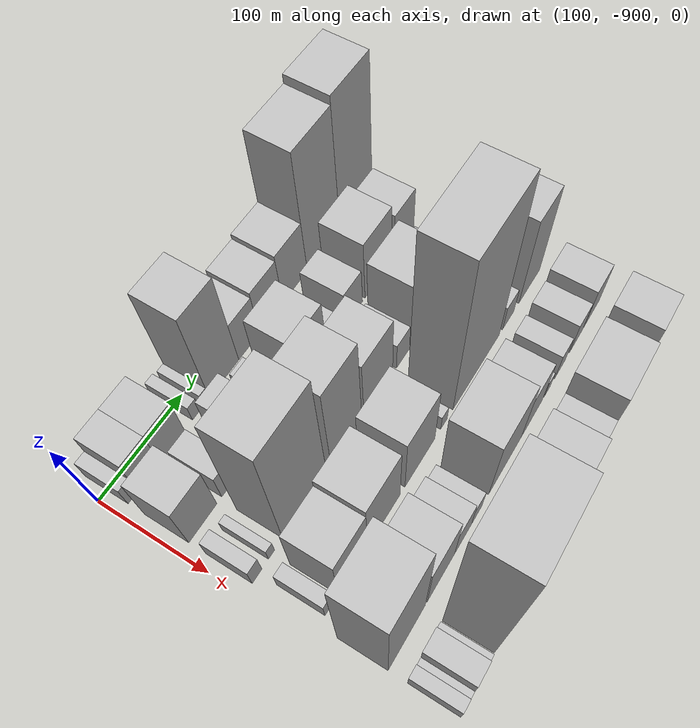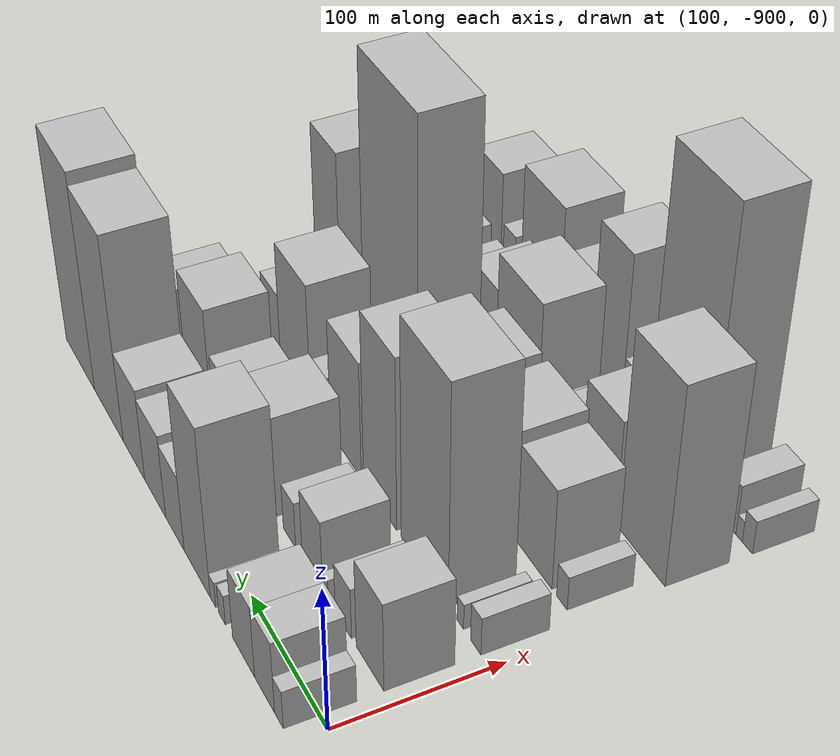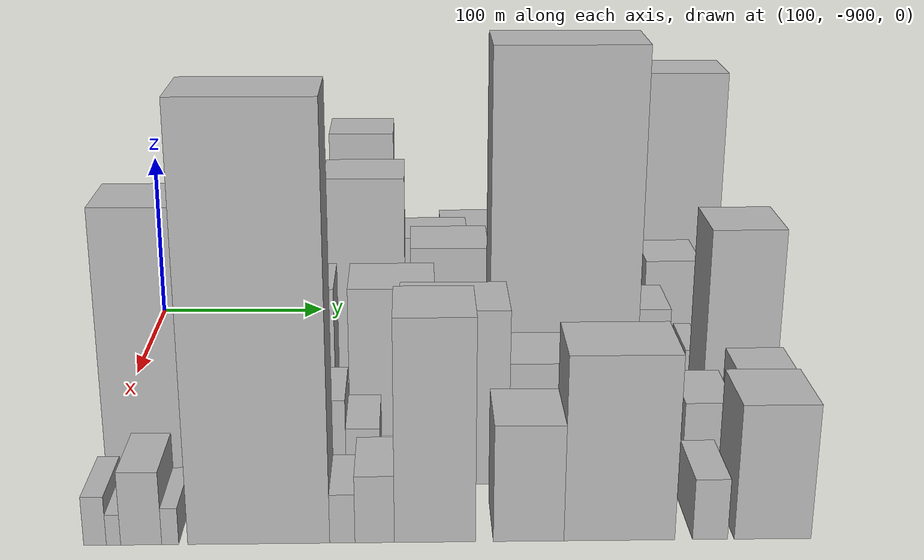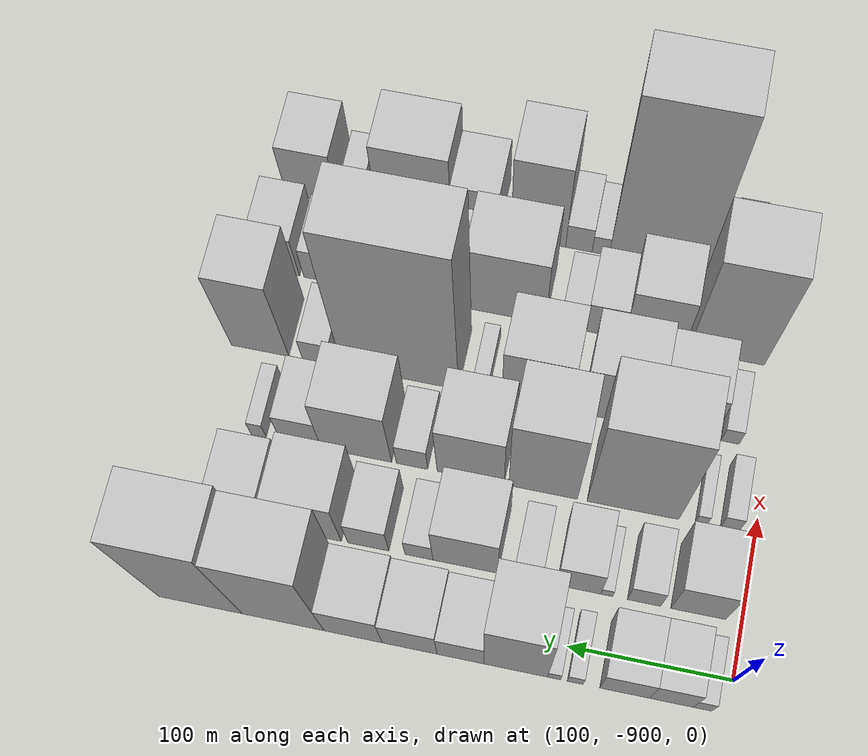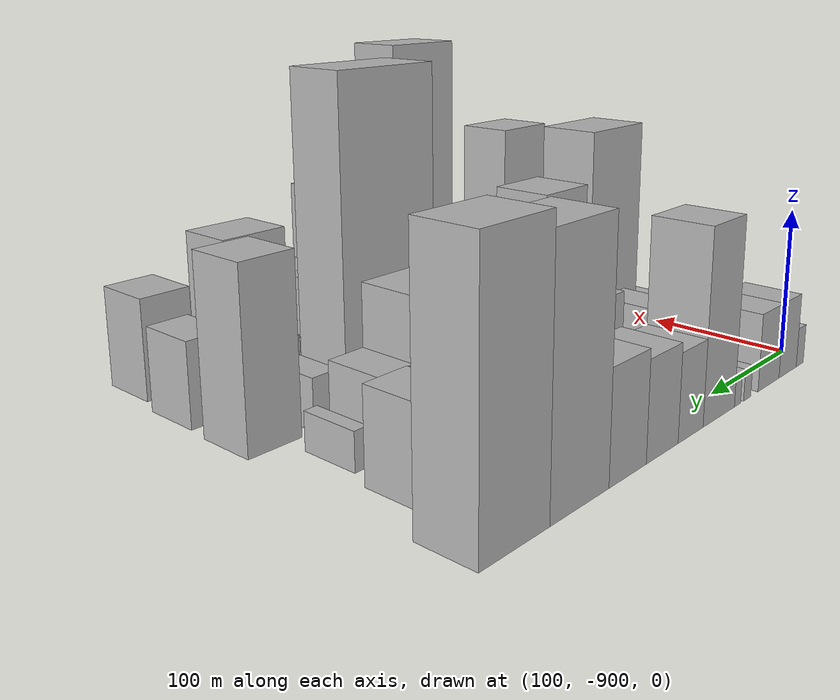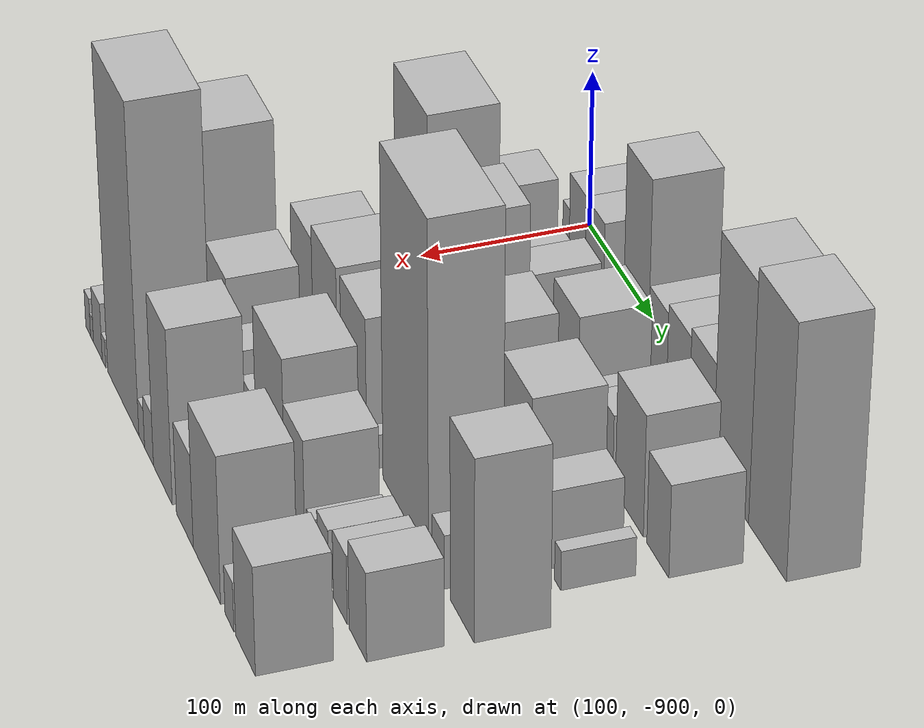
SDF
<sdf version="1.6">
 <world name="default">
  <model name="building_1">
   <static>1</static>
   <pose>100.0000 -884.4774 0 0.000000 0.000000 0.000000</pose>
   <link name="link">
    <pose>0 0 13.50 0 0 0</pose>
    <collision name="collision"><geometry><box><size>40.0000 11.0452 27.0000</size></box></geometry></collision>
    <visual name="visual">
     <cast_shadows>0</cast_shadows>
     <geometry><box><size>40.0000 11.0452 27.0000</size></box></geometry>
     <material>
      <script>
       <uri>model://HANNAS_wall/materials/scripts</uri>
       <uri>model://HANNAS_wall/materials/textures</uri>
       <name>vrc/HANNAS_wall</name>
      </script>
     </material>
    </visual>
   </link>
  </model>
  <model name="building_2">
   <static>1</static>
   <pose>100.0000 -865.9473 0 0.000000 0.000000 0.000000</pose>
   <link name="link">
    <pose>0 0 25.50 0 0 0</pose>
    <collision name="collision"><geometry><box><size>40.0000 26.0150 51.0000</size></box></geometry></collision>
    <visual name="visual">
     <cast_shadows>0</cast_shadows>
     <geometry><box><size>40.0000 26.0150 51.0000</size></box></geometry>
     <material>
      <script>
       <uri>model://HANNAS_wall/materials/scripts</uri>
       <uri>model://HANNAS_wall/materials/textures</uri>
       <name>vrc/HANNAS_wall</name>
      </script>
     </material>
    </visual>
   </link>
  </model>
  <model name="building_3">
   <static>1</static>
   <pose>100.0000 -837.9995 0 0.000000 0.000000 0.000000</pose>
   <link name="link">
    <pose>0 0 25.50 0 0 0</pose>
    <collision name="collision"><geometry><box><size>40.0000 29.8806 51.0000</size></box></geometry></collision>
    <visual name="visual">
     <cast_shadows>0</cast_shadows>
     <geometry><box><size>40.0000 29.8806 51.0000</size></box></geometry>
     <material>
      <script>
       <uri>model://HANNAS_wall/materials/scripts</uri>
       <uri>model://HANNAS_wall/materials/textures</uri>
       <name>vrc/HANNAS_wall</name>
      </script>
     </material>
    </visual>
   </link>
  </model>
  <model name="building_4">
   <static>1</static>
   <pose>100.0000 -808.3161 0 0.000000 0.000000 0.000000</pose>
   <link name="link">
    <pose>0 0 10.50 0 0 0</pose>
    <collision name="collision"><geometry><box><size>40.0000 9.4863 21.0000</size></box></geometry></collision>
    <visual name="visual">
     <cast_shadows>0</cast_shadows>
     <geometry><box><size>40.0000 9.4863 21.0000</size></box></geometry>
     <material>
      <script>
       <uri>model://HANNAS_wall/materials/scripts</uri>
       <uri>model://HANNAS_wall/materials/textures</uri>
       <name>vrc/HANNAS_wall</name>
      </script>
     </material>
    </visual>
   </link>
  </model>
  <model name="building_5">
   <static>1</static>
   <pose>100.0000 -795.6300 0 0.000000 0.000000 0.000000</pose>
   <link name="link">
    <pose>0 0 9.00 0 0 0</pose>
    <collision name="collision"><geometry><box><size>40.0000 7.8860 18.0000</size></box></geometry></collision>
    <visual name="visual">
     <cast_shadows>0</cast_shadows>
     <geometry><box><size>40.0000 7.8860 18.0000</size></box></geometry>
     <material>
      <script>
       <uri>model://HANNAS_wall/materials/scripts</uri>
       <uri>model://HANNAS_wall/materials/textures</uri>
       <name>vrc/HANNAS_wall</name>
      </script>
     </material>
    </visual>
   </link>
  </model>
  <model name="building_6">
   <static>1</static>
   <pose>100.0000 -772.4363 0 0.000000 0.000000 0.000000</pose>
   <link name="link">
    <pose>0 0 60.00 0 0 0</pose>
    <collision name="collision"><geometry><box><size>40.0000 38.5014 120.0000</size></box></geometry></collision>
    <visual name="visual">
     <cast_shadows>0</cast_shadows>
     <geometry><box><size>40.0000 38.5014 120.0000</size></box></geometry>
     <material>
      <script>
       <uri>model://HANNAS_wall/materials/scripts</uri>
       <uri>model://HANNAS_wall/materials/textures</uri>
       <name>vrc/HANNAS_wall</name>
      </script>
     </material>
    </visual>
   </link>
  </model>
  <model name="building_7">
   <static>1</static>
   <pose>100.0000 -739.0061 0 0.000000 0.000000 0.000000</pose>
   <link name="link">
    <pose>0 0 27.00 0 0 0</pose>
    <collision name="collision"><geometry><box><size>40.0000 28.3591 54.0000</size></box></geometry></collision>
    <visual name="visual">
     <cast_shadows>0</cast_shadows>
     <geometry><box><size>40.0000 28.3591 54.0000</size></box></geometry>
     <material>
      <script>
       <uri>model://HANNAS_wall/materials/scripts</uri>
       <uri>model://HANNAS_wall/materials/textures</uri>
       <name>vrc/HANNAS_wall</name>
      </script>
     </material>
    </visual>
   </link>
  </model>
  <model name="building_8">
   <static>1</static>
   <pose>100.0000 -708.1347 0 0.000000 0.000000 0.000000</pose>
   <link name="link">
    <pose>0 0 30.00 0 0 0</pose>
    <collision name="collision"><geometry><box><size>40.0000 33.3837 60.0000</size></box></geometry></collision>
    <visual name="visual">
     <cast_shadows>0</cast_shadows>
     <geometry><box><size>40.0000 33.3837 60.0000</size></box></geometry>
     <material>
      <script>
       <uri>model://HANNAS_wall/materials/scripts</uri>
       <uri>model://HANNAS_wall/materials/textures</uri>
       <name>vrc/HANNAS_wall</name>
      </script>
     </material>
    </visual>
   </link>
  </model>
  <model name="building_9">
   <static>1</static>
   <pose>100.0000 -673.5564 0 0.000000 0.000000 0.000000</pose>
   <link name="link">
    <pose>0 0 33.00 0 0 0</pose>
    <collision name="collision"><geometry><box><size>40.0000 35.7729 66.0000</size></box></geometry></collision>
    <visual name="visual">
     <cast_shadows>0</cast_shadows>
     <geometry><box><size>40.0000 35.7729 66.0000</size></box></geometry>
     <material>
      <script>
       <uri>model://HANNAS_wall/materials/scripts</uri>
       <uri>model://HANNAS_wall/materials/textures</uri>
       <name>vrc/HANNAS_wall</name>
      </script>
     </material>
    </visual>
   </link>
  </model>
  <model name="building_10">
   <static>1</static>
   <pose>100.0000 -630.4714 0 0.000000 0.000000 0.000000</pose>
   <link name="link">
    <pose>0 0 73.50 0 0 0</pose>
    <collision name="collision"><geometry><box><size>40.0000 50.3971 147.0000</size></box></geometry></collision>
    <visual name="visual">
     <cast_shadows>0</cast_shadows>
     <geometry><box><size>40.0000 50.3971 147.0000</size></box></geometry>
     <material>
      <script>
       <uri>model://HANNAS_wall/materials/scripts</uri>
       <uri>model://HANNAS_wall/materials/textures</uri>
       <name>vrc/HANNAS_wall</name>
      </script>
     </material>
    </visual>
   </link>
  </model>
  <model name="building_11">
   <static>1</static>
   <pose>100.0000 -579.1356 0 0.000000 0.000000 0.000000</pose>
   <link name="link">
    <pose>0 0 78.00 0 0 0</pose>
    <collision name="collision"><geometry><box><size>40.0000 52.2745 156.0000</size></box></geometry></collision>
    <visual name="visual">
     <cast_shadows>0</cast_shadows>
     <geometry><box><size>40.0000 52.2745 156.0000</size></box></geometry>
     <material>
      <script>
       <uri>model://HANNAS_wall/materials/scripts</uri>
       <uri>model://HANNAS_wall/materials/textures</uri>
       <name>vrc/HANNAS_wall</name>
      </script>
     </material>
    </visual>
   </link>
  </model>
  <model name="building_49">
   <static>1</static>
   <pose>155.0000 -873.2870 0 0.000000 0.000000 0.000000</pose>
   <link name="link">
    <pose>0 0 31.50 0 0 0</pose>
    <collision name="collision"><geometry><box><size>40.0000 33.4260 63.0000</size></box></geometry></collision>
    <visual name="visual">
     <cast_shadows>0</cast_shadows>
     <geometry><box><size>40.0000 33.4260 63.0000</size></box></geometry>
     <material>
      <script>
       <uri>model://HANNAS_wall/materials/scripts</uri>
       <uri>model://HANNAS_wall/materials/textures</uri>
       <name>vrc/HANNAS_wall</name>
      </script>
     </material>
    </visual>
   </link>
  </model>
  <model name="building_50">
   <static>1</static>
   <pose>155.0000 -840.3611 0 0.000000 0.000000 0.000000</pose>
   <link name="link">
    <pose>0 0 18.00 0 0 0</pose>
    <collision name="collision"><geometry><box><size>40.0000 20.4257 36.0000</size></box></geometry></collision>
    <visual name="visual">
     <cast_shadows>0</cast_shadows>
     <geometry><box><size>40.0000 20.4257 36.0000</size></box></geometry>
     <material>
      <script>
       <uri>model://HANNAS_wall/materials/scripts</uri>
       <uri>model://HANNAS_wall/materials/textures</uri>
       <name>vrc/HANNAS_wall</name>
      </script>
     </material>
    </visual>
   </link>
  </model>
  <model name="building_51">
   <static>1</static>
   <pose>155.0000 -817.4871 0 0.000000 0.000000 0.000000</pose>
   <link name="link">
    <pose>0 0 7.50 0 0 0</pose>
    <collision name="collision"><geometry><box><size>40.0000 7.3223 15.0000</size></box></geometry></collision>
    <visual name="visual">
     <cast_shadows>0</cast_shadows>
     <geometry><box><size>40.0000 7.3223 15.0000</size></box></geometry>
     <material>
      <script>
       <uri>model://HANNAS_wall/materials/scripts</uri>
       <uri>model://HANNAS_wall/materials/textures</uri>
       <name>vrc/HANNAS_wall</name>
      </script>
     </material>
    </visual>
   </link>
  </model>
  <model name="building_52">
   <static>1</static>
   <pose>155.0000 -800.2898 0 0.000000 0.000000 0.000000</pose>
   <link name="link">
    <pose>0 0 25.50 0 0 0</pose>
    <collision name="collision"><geometry><box><size>40.0000 27.0723 51.0000</size></box></geometry></collision>
    <visual name="visual">
     <cast_shadows>0</cast_shadows>
     <geometry><box><size>40.0000 27.0723 51.0000</size></box></geometry>
     <material>
      <script>
       <uri>model://HANNAS_wall/materials/scripts</uri>
       <uri>model://HANNAS_wall/materials/textures</uri>
       <name>vrc/HANNAS_wall</name>
      </script>
     </material>
    </visual>
   </link>
  </model>
  <model name="building_53">
   <static>1</static>
   <pose>155.0000 -769.2346 0 0.000000 0.000000 0.000000</pose>
   <link name="link">
    <pose>0 0 16.50 0 0 0</pose>
    <collision name="collision"><geometry><box><size>40.0000 17.0382 33.0000</size></box></geometry></collision>
    <visual name="visual">
     <cast_shadows>0</cast_shadows>
     <geometry><box><size>40.0000 17.0382 33.0000</size></box></geometry>
     <material>
      <script>
       <uri>model://HANNAS_wall/materials/scripts</uri>
       <uri>model://HANNAS_wall/materials/textures</uri>
       <name>vrc/HANNAS_wall</name>
      </script>
     </material>
    </visual>
   </link>
  </model>
  <model name="building_54">
   <static>1</static>
   <pose>155.0000 -730.5223 0 0.000000 0.000000 0.000000</pose>
   <link name="link">
    <pose>0 0 36.00 0 0 0</pose>
    <collision name="collision"><geometry><box><size>40.0000 40.3863 72.0000</size></box></geometry></collision>
    <visual name="visual">
     <cast_shadows>0</cast_shadows>
     <geometry><box><size>40.0000 40.3863 72.0000</size></box></geometry>
     <material>
      <script>
       <uri>model://HANNAS_wall/materials/scripts</uri>
       <uri>model://HANNAS_wall/materials/textures</uri>
       <name>vrc/HANNAS_wall</name>
      </script>
     </material>
    </visual>
   </link>
  </model>
  <model name="building_55">
   <static>1</static>
   <pose>155.0000 -701.5966 0 0.000000 0.000000 0.000000</pose>
   <link name="link">
    <pose>0 0 16.50 0 0 0</pose>
    <collision name="collision"><geometry><box><size>40.0000 17.4652 33.0000</size></box></geometry></collision>
    <visual name="visual">
     <cast_shadows>0</cast_shadows>
     <geometry><box><size>40.0000 17.4652 33.0000</size></box></geometry>
     <material>
      <script>
       <uri>model://HANNAS_wall/materials/scripts</uri>
       <uri>model://HANNAS_wall/materials/textures</uri>
       <name>vrc/HANNAS_wall</name>
      </script>
     </material>
    </visual>
   </link>
  </model>
  <model name="building_56">
   <static>1</static>
   <pose>155.0000 -670.0033 0 0.000000 0.000000 0.000000</pose>
   <link name="link">
    <pose>0 0 22.50 0 0 0</pose>
    <collision name="collision"><geometry><box><size>40.0000 25.7213 45.0000</size></box></geometry></collision>
    <visual name="visual">
     <cast_shadows>0</cast_shadows>
     <geometry><box><size>40.0000 25.7213 45.0000</size></box></geometry>
     <material>
      <script>
       <uri>model://HANNAS_wall/materials/scripts</uri>
       <uri>model://HANNAS_wall/materials/textures</uri>
       <name>vrc/HANNAS_wall</name>
      </script>
     </material>
    </visual>
   </link>
  </model>
  <model name="building_57">
   <static>1</static>
   <pose>155.0000 -632.3039 0 0.000000 0.000000 0.000000</pose>
   <link name="link">
    <pose>0 0 37.50 0 0 0</pose>
    <collision name="collision"><geometry><box><size>40.0000 41.6775 75.0000</size></box></geometry></collision>
    <visual name="visual">
     <cast_shadows>0</cast_shadows>
     <geometry><box><size>40.0000 41.6775 75.0000</size></box></geometry>
     <material>
      <script>
       <uri>model://HANNAS_wall/materials/scripts</uri>
       <uri>model://HANNAS_wall/materials/textures</uri>
       <name>vrc/HANNAS_wall</name>
      </script>
     </material>
    </visual>
   </link>
  </model>
  <model name="building_58">
   <static>1</static>
   <pose>155.0000 -590.5576 0 0.000000 0.000000 0.000000</pose>
   <link name="link">
    <pose>0 0 28.50 0 0 0</pose>
    <collision name="collision"><geometry><box><size>40.0000 31.8151 57.0000</size></box></geometry></collision>
    <visual name="visual">
     <cast_shadows>0</cast_shadows>
     <geometry><box><size>40.0000 31.8151 57.0000</size></box></geometry>
     <material>
      <script>
       <uri>model://HANNAS_wall/materials/scripts</uri>
       <uri>model://HANNAS_wall/materials/textures</uri>
       <name>vrc/HANNAS_wall</name>
      </script>
     </material>
    </visual>
   </link>
  </model>
  <model name="building_94">
   <static>1</static>
   <pose>210.0000 -884.1541 0 0.000000 0.000000 0.000000</pose>
   <link name="link">
    <pose>0 0 13.50 0 0 0</pose>
    <collision name="collision"><geometry><box><size>40.0000 11.6917 27.0000</size></box></geometry></collision>
    <visual name="visual">
     <cast_shadows>0</cast_shadows>
     <geometry><box><size>40.0000 11.6917 27.0000</size></box></geometry>
     <material>
      <script>
       <uri>model://HANNAS_wall/materials/scripts</uri>
       <uri>model://HANNAS_wall/materials/textures</uri>
       <name>vrc/HANNAS_wall</name>
      </script>
     </material>
    </visual>
   </link>
  </model>
  <model name="building_95">
   <static>1</static>
   <pose>210.0000 -866.5530 0 0.000000 0.000000 0.000000</pose>
   <link name="link">
    <pose>0 0 9.00 0 0 0</pose>
    <collision name="collision"><geometry><box><size>40.0000 7.5105 18.0000</size></box></geometry></collision>
    <visual name="visual">
     <cast_shadows>0</cast_shadows>
     <geometry><box><size>40.0000 7.5105 18.0000</size></box></geometry>
     <material>
      <script>
       <uri>model://HANNAS_wall/materials/scripts</uri>
       <uri>model://HANNAS_wall/materials/textures</uri>
       <name>vrc/HANNAS_wall</name>
      </script>
     </material>
    </visual>
   </link>
  </model>
  <model name="building_96">
   <static>1</static>
   <pose>210.0000 -824.1190 0 0.000000 0.000000 0.000000</pose>
   <link name="link">
    <pose>0 0 78.00 0 0 0</pose>
    <collision name="collision"><geometry><box><size>40.0000 57.3577 156.0000</size></box></geometry></collision>
    <visual name="visual">
     <cast_shadows>0</cast_shadows>
     <geometry><box><size>40.0000 57.3577 156.0000</size></box></geometry>
     <material>
      <script>
       <uri>model://HANNAS_wall/materials/scripts</uri>
       <uri>model://HANNAS_wall/materials/textures</uri>
       <name>vrc/HANNAS_wall</name>
      </script>
     </material>
    </visual>
   </link>
  </model>
  <model name="building_97">
   <static>1</static>
   <pose>210.0000 -767.8719 0 0.000000 0.000000 0.000000</pose>
   <link name="link">
    <pose>0 0 61.50 0 0 0</pose>
    <collision name="collision"><geometry><box><size>40.0000 43.1364 123.0000</size></box></geometry></collision>
    <visual name="visual">
     <cast_shadows>0</cast_shadows>
     <geometry><box><size>40.0000 43.1364 123.0000</size></box></geometry>
     <material>
      <script>
       <uri>model://HANNAS_wall/materials/scripts</uri>
       <uri>model://HANNAS_wall/materials/textures</uri>
       <name>vrc/HANNAS_wall</name>
      </script>
     </material>
    </visual>
   </link>
  </model>
  <model name="building_98">
   <static>1</static>
   <pose>210.0000 -722.1427 0 0.000000 0.000000 0.000000</pose>
   <link name="link">
    <pose>0 0 42.00 0 0 0</pose>
    <collision name="collision"><geometry><box><size>40.0000 42.3221 84.0000</size></box></geometry></collision>
    <visual name="visual">
     <cast_shadows>0</cast_shadows>
     <geometry><box><size>40.0000 42.3221 84.0000</size></box></geometry>
     <material>
      <script>
       <uri>model://HANNAS_wall/materials/scripts</uri>
       <uri>model://HANNAS_wall/materials/textures</uri>
       <name>vrc/HANNAS_wall</name>
      </script>
     </material>
    </visual>
   </link>
  </model>
  <model name="building_99">
   <static>1</static>
   <pose>210.0000 -685.0271 0 0.000000 0.000000 0.000000</pose>
   <link name="link">
    <pose>0 0 18.00 0 0 0</pose>
    <collision name="collision"><geometry><box><size>40.0000 19.9092 36.0000</size></box></geometry></collision>
    <visual name="visual">
     <cast_shadows>0</cast_shadows>
     <geometry><box><size>40.0000 19.9092 36.0000</size></box></geometry>
     <material>
      <script>
       <uri>model://HANNAS_wall/materials/scripts</uri>
       <uri>model://HANNAS_wall/materials/textures</uri>
       <name>vrc/HANNAS_wall</name>
      </script>
     </material>
    </visual>
   </link>
  </model>
  <model name="building_100">
   <static>1</static>
   <pose>210.0000 -649.6004 0 0.000000 0.000000 0.000000</pose>
   <link name="link">
    <pose>0 0 43.50 0 0 0</pose>
    <collision name="collision"><geometry><box><size>40.0000 44.9441 87.0000</size></box></geometry></collision>
    <visual name="visual">
     <cast_shadows>0</cast_shadows>
     <geometry><box><size>40.0000 44.9441 87.0000</size></box></geometry>
     <material>
      <script>
       <uri>model://HANNAS_wall/materials/scripts</uri>
       <uri>model://HANNAS_wall/materials/textures</uri>
       <name>vrc/HANNAS_wall</name>
      </script>
     </material>
    </visual>
   </link>
  </model>
  <model name="building_101">
   <static>1</static>
   <pose>210.0000 -613.8951 0 0.000000 0.000000 0.000000</pose>
   <link name="link">
    <pose>0 0 24.00 0 0 0</pose>
    <collision name="collision"><geometry><box><size>40.0000 26.4667 48.0000</size></box></geometry></collision>
    <visual name="visual">
     <cast_shadows>0</cast_shadows>
     <geometry><box><size>40.0000 26.4667 48.0000</size></box></geometry>
     <material>
      <script>
       <uri>model://HANNAS_wall/materials/scripts</uri>
       <uri>model://HANNAS_wall/materials/textures</uri>
       <name>vrc/HANNAS_wall</name>
      </script>
     </material>
    </visual>
   </link>
  </model>
  <model name="building_102">
   <static>1</static>
   <pose>210.0000 -586.8007 0 0.000000 0.000000 0.000000</pose>
   <link name="link">
    <pose>0 0 12.00 0 0 0</pose>
    <collision name="collision"><geometry><box><size>40.0000 9.7220 24.0000</size></box></geometry></collision>
    <visual name="visual">
     <cast_shadows>0</cast_shadows>
     <geometry><box><size>40.0000 9.7220 24.0000</size></box></geometry>
     <material>
      <script>
       <uri>model://HANNAS_wall/materials/scripts</uri>
       <uri>model://HANNAS_wall/materials/textures</uri>
       <name>vrc/HANNAS_wall</name>
      </script>
     </material>
    </visual>
   </link>
  </model>
  <model name="building_144">
   <static>1</static>
   <pose>265.0000 -876.2543 0 0.000000 0.000000 0.000000</pose>
   <link name="link">
    <pose>0 0 12.00 0 0 0</pose>
    <collision name="collision"><geometry><box><size>40.0000 11.4914 24.0000</size></box></geometry></collision>
    <visual name="visual">
     <cast_shadows>0</cast_shadows>
     <geometry><box><size>40.0000 11.4914 24.0000</size></box></geometry>
     <material>
      <script>
       <uri>model://HANNAS_wall/materials/scripts</uri>
       <uri>model://HANNAS_wall/materials/textures</uri>
       <name>vrc/HANNAS_wall</name>
      </script>
     </material>
    </visual>
   </link>
  </model>
  <model name="building_145">
   <static>1</static>
   <pose>265.0000 -846.0713 0 0.000000 0.000000 0.000000</pose>
   <link name="link">
    <pose>0 0 36.00 0 0 0</pose>
    <collision name="collision"><geometry><box><size>40.0000 38.8746 72.0000</size></box></geometry></collision>
    <visual name="visual">
     <cast_shadows>0</cast_shadows>
     <geometry><box><size>40.0000 38.8746 72.0000</size></box></geometry>
     <material>
      <script>
       <uri>model://HANNAS_wall/materials/scripts</uri>
       <uri>model://HANNAS_wall/materials/textures</uri>
       <name>vrc/HANNAS_wall</name>
      </script>
     </material>
    </visual>
   </link>
  </model>
  <model name="building_146">
   <static>1</static>
   <pose>265.0000 -804.3601 0 0.000000 0.000000 0.000000</pose>
   <link name="link">
    <pose>0 0 40.50 0 0 0</pose>
    <collision name="collision"><geometry><box><size>40.0000 44.5479 81.0000</size></box></geometry></collision>
    <visual name="visual">
     <cast_shadows>0</cast_shadows>
     <geometry><box><size>40.0000 44.5479 81.0000</size></box></geometry>
     <material>
      <script>
       <uri>model://HANNAS_wall/materials/scripts</uri>
       <uri>model://HANNAS_wall/materials/textures</uri>
       <name>vrc/HANNAS_wall</name>
      </script>
     </material>
    </visual>
   </link>
  </model>
  <model name="building_147">
   <static>1</static>
   <pose>265.0000 -753.0333 0 0.000000 0.000000 0.000000</pose>
   <link name="link">
    <pose>0 0 40.50 0 0 0</pose>
    <collision name="collision"><geometry><box><size>40.0000 44.1056 81.0000</size></box></geometry></collision>
    <visual name="visual">
     <cast_shadows>0</cast_shadows>
     <geometry><box><size>40.0000 44.1056 81.0000</size></box></geometry>
     <material>
      <script>
       <uri>model://HANNAS_wall/materials/scripts</uri>
       <uri>model://HANNAS_wall/materials/textures</uri>
       <name>vrc/HANNAS_wall</name>
      </script>
     </material>
    </visual>
   </link>
  </model>
  <model name="building_148">
   <static>1</static>
   <pose>265.0000 -716.9678 0 0.000000 0.000000 0.000000</pose>
   <link name="link">
    <pose>0 0 10.50 0 0 0</pose>
    <collision name="collision"><geometry><box><size>40.0000 10.0254 21.0000</size></box></geometry></collision>
    <visual name="visual">
     <cast_shadows>0</cast_shadows>
     <geometry><box><size>40.0000 10.0254 21.0000</size></box></geometry>
     <material>
      <script>
       <uri>model://HANNAS_wall/materials/scripts</uri>
       <uri>model://HANNAS_wall/materials/textures</uri>
       <name>vrc/HANNAS_wall</name>
      </script>
     </material>
    </visual>
   </link>
  </model>
  <model name="building_149">
   <static>1</static>
   <pose>265.0000 -665.0337 0 0.000000 0.000000 0.000000</pose>
   <link name="link">
    <pose>0 0 102.00 0 0 0</pose>
    <collision name="collision"><geometry><box><size>40.0000 75.8428 204.0000</size></box></geometry></collision>
    <visual name="visual">
     <cast_shadows>0</cast_shadows>
     <geometry><box><size>40.0000 75.8428 204.0000</size></box></geometry>
     <material>
      <script>
       <uri>model://HANNAS_wall/materials/scripts</uri>
       <uri>model://HANNAS_wall/materials/textures</uri>
       <name>vrc/HANNAS_wall</name>
      </script>
     </material>
    </visual>
   </link>
  </model>
  <model name="building_150">
   <static>1</static>
   <pose>265.0000 -611.2584 0 0.000000 0.000000 0.000000</pose>
   <link name="link">
    <pose>0 0 16.50 0 0 0</pose>
    <collision name="collision"><geometry><box><size>40.0000 19.7077 33.0000</size></box></geometry></collision>
    <visual name="visual">
     <cast_shadows>0</cast_shadows>
     <geometry><box><size>40.0000 19.7077 33.0000</size></box></geometry>
     <material>
      <script>
       <uri>model://HANNAS_wall/materials/scripts</uri>
       <uri>model://HANNAS_wall/materials/textures</uri>
       <name>vrc/HANNAS_wall</name>
      </script>
     </material>
    </visual>
   </link>
  </model>
  <model name="building_151">
   <static>1</static>
   <pose>265.0000 -573.5316 0 0.000000 0.000000 0.000000</pose>
   <link name="link">
    <pose>0 0 55.50 0 0 0</pose>
    <collision name="collision"><geometry><box><size>40.0000 37.7459 111.0000</size></box></geometry></collision>
    <visual name="visual">
     <cast_shadows>0</cast_shadows>
     <geometry><box><size>40.0000 37.7459 111.0000</size></box></geometry>
     <material>
      <script>
       <uri>model://HANNAS_wall/materials/scripts</uri>
       <uri>model://HANNAS_wall/materials/textures</uri>
       <name>vrc/HANNAS_wall</name>
      </script>
     </material>
    </visual>
   </link>
  </model>
  <model name="building_193">
   <static>1</static>
   <pose>320.0000 -865.4779 0 0.000000 0.000000 0.000000</pose>
   <link name="link">
    <pose>0 0 70.50 0 0 0</pose>
    <collision name="collision"><geometry><box><size>40.0000 49.0442 141.0000</size></box></geometry></collision>
    <visual name="visual">
     <cast_shadows>0</cast_shadows>
     <geometry><box><size>40.0000 49.0442 141.0000</size></box></geometry>
     <material>
      <script>
       <uri>model://HANNAS_wall/materials/scripts</uri>
       <uri>model://HANNAS_wall/materials/textures</uri>
       <name>vrc/HANNAS_wall</name>
      </script>
     </material>
    </visual>
   </link>
  </model>
  <model name="building_194">
   <static>1</static>
   <pose>320.0000 -818.7415 0 0.000000 0.000000 0.000000</pose>
   <link name="link">
    <pose>0 0 37.50 0 0 0</pose>
    <collision name="collision"><geometry><box><size>40.0000 38.4287 75.0000</size></box></geometry></collision>
    <visual name="visual">
     <cast_shadows>0</cast_shadows>
     <geometry><box><size>40.0000 38.4287 75.0000</size></box></geometry>
     <material>
      <script>
       <uri>model://HANNAS_wall/materials/scripts</uri>
       <uri>model://HANNAS_wall/materials/textures</uri>
       <name>vrc/HANNAS_wall</name>
      </script>
     </material>
    </visual>
   </link>
  </model>
  <model name="building_195">
   <static>1</static>
   <pose>320.0000 -787.1270 0 0.000000 0.000000 0.000000</pose>
   <link name="link">
    <pose>0 0 22.50 0 0 0</pose>
    <collision name="collision"><geometry><box><size>40.0000 24.8002 45.0000</size></box></geometry></collision>
    <visual name="visual">
     <cast_shadows>0</cast_shadows>
     <geometry><box><size>40.0000 24.8002 45.0000</size></box></geometry>
     <material>
      <script>
       <uri>model://HANNAS_wall/materials/scripts</uri>
       <uri>model://HANNAS_wall/materials/textures</uri>
       <name>vrc/HANNAS_wall</name>
      </script>
     </material>
    </visual>
   </link>
  </model>
  <model name="building_196">
   <static>1</static>
   <pose>320.0000 -766.5515 0 0.000000 0.000000 0.000000</pose>
   <link name="link">
    <pose>0 0 15.00 0 0 0</pose>
    <collision name="collision"><geometry><box><size>40.0000 16.3509 30.0000</size></box></geometry></collision>
    <visual name="visual">
     <cast_shadows>0</cast_shadows>
     <geometry><box><size>40.0000 16.3509 30.0000</size></box></geometry>
     <material>
      <script>
       <uri>model://HANNAS_wall/materials/scripts</uri>
       <uri>model://HANNAS_wall/materials/textures</uri>
       <name>vrc/HANNAS_wall</name>
      </script>
     </material>
    </visual>
   </link>
  </model>
  <model name="building_197">
   <static>1</static>
   <pose>320.0000 -722.2987 0 0.000000 0.000000 0.000000</pose>
   <link name="link">
    <pose>0 0 45.00 0 0 0</pose>
    <collision name="collision"><geometry><box><size>40.0000 52.1547 90.0000</size></box></geometry></collision>
    <visual name="visual">
     <cast_shadows>0</cast_shadows>
     <geometry><box><size>40.0000 52.1547 90.0000</size></box></geometry>
     <material>
      <script>
       <uri>model://HANNAS_wall/materials/scripts</uri>
       <uri>model://HANNAS_wall/materials/textures</uri>
       <name>vrc/HANNAS_wall</name>
      </script>
     </material>
    </visual>
   </link>
  </model>
  <model name="building_198">
   <static>1</static>
   <pose>320.0000 -678.7505 0 0.000000 0.000000 0.000000</pose>
   <link name="link">
    <pose>0 0 31.50 0 0 0</pose>
    <collision name="collision"><geometry><box><size>40.0000 34.9416 63.0000</size></box></geometry></collision>
    <visual name="visual">
     <cast_shadows>0</cast_shadows>
     <geometry><box><size>40.0000 34.9416 63.0000</size></box></geometry>
     <material>
      <script>
       <uri>model://HANNAS_wall/materials/scripts</uri>
       <uri>model://HANNAS_wall/materials/textures</uri>
       <name>vrc/HANNAS_wall</name>
      </script>
     </material>
    </visual>
   </link>
  </model>
  <model name="building_199">
   <static>1</static>
   <pose>320.0000 -652.0409 0 0.000000 0.000000 0.000000</pose>
   <link name="link">
    <pose>0 0 12.00 0 0 0</pose>
    <collision name="collision"><geometry><box><size>40.0000 10.4775 24.0000</size></box></geometry></collision>
    <visual name="visual">
     <cast_shadows>0</cast_shadows>
     <geometry><box><size>40.0000 10.4775 24.0000</size></box></geometry>
     <material>
      <script>
       <uri>model://HANNAS_wall/materials/scripts</uri>
       <uri>model://HANNAS_wall/materials/textures</uri>
       <name>vrc/HANNAS_wall</name>
      </script>
     </material>
    </visual>
   </link>
  </model>
  <model name="building_200">
   <static>1</static>
   <pose>320.0000 -629.4484 0 0.000000 0.000000 0.000000</pose>
   <link name="link">
    <pose>0 0 18.00 0 0 0</pose>
    <collision name="collision"><geometry><box><size>40.0000 18.7076 36.0000</size></box></geometry></collision>
    <visual name="visual">
     <cast_shadows>0</cast_shadows>
     <geometry><box><size>40.0000 18.7076 36.0000</size></box></geometry>
     <material>
      <script>
       <uri>model://HANNAS_wall/materials/scripts</uri>
       <uri>model://HANNAS_wall/materials/textures</uri>
       <name>vrc/HANNAS_wall</name>
      </script>
     </material>
    </visual>
   </link>
  </model>
  <model name="building_201">
   <static>1</static>
   <pose>320.0000 -600.4130 0 0.000000 0.000000 0.000000</pose>
   <link name="link">
    <pose>0 0 21.00 0 0 0</pose>
    <collision name="collision"><geometry><box><size>40.0000 23.3632 42.0000</size></box></geometry></collision>
    <visual name="visual">
     <cast_shadows>0</cast_shadows>
     <geometry><box><size>40.0000 23.3632 42.0000</size></box></geometry>
     <material>
      <script>
       <uri>model://HANNAS_wall/materials/scripts</uri>
       <uri>model://HANNAS_wall/materials/textures</uri>
       <name>vrc/HANNAS_wall</name>
      </script>
     </material>
    </visual>
   </link>
  </model>
  <model name="building_202">
   <static>1</static>
   <pose>320.0000 -571.2479 0 0.000000 0.000000 0.000000</pose>
   <link name="link">
    <pose>0 0 27.00 0 0 0</pose>
    <collision name="collision"><geometry><box><size>40.0000 28.9671 54.0000</size></box></geometry></collision>
    <visual name="visual">
     <cast_shadows>0</cast_shadows>
     <geometry><box><size>40.0000 28.9671 54.0000</size></box></geometry>
     <material>
      <script>
       <uri>model://HANNAS_wall/materials/scripts</uri>
       <uri>model://HANNAS_wall/materials/textures</uri>
       <name>vrc/HANNAS_wall</name>
      </script>
     </material>
    </visual>
   </link>
  </model>
  <model name="building_246">
   <static>1</static>
   <pose>375.0000 -884.9548 0 0.000000 0.000000 0.000000</pose>
   <link name="link">
    <pose>0 0 12.00 0 0 0</pose>
    <collision name="collision"><geometry><box><size>40.0000 10.0903 24.0000</size></box></geometry></collision>
    <visual name="visual">
     <cast_shadows>0</cast_shadows>
     <geometry><box><size>40.0000 10.0903 24.0000</size></box></geometry>
     <material>
      <script>
       <uri>model://HANNAS_wall/materials/scripts</uri>
       <uri>model://HANNAS_wall/materials/textures</uri>
       <name>vrc/HANNAS_wall</name>
      </script>
     </material>
    </visual>
   </link>
  </model>
  <model name="building_247">
   <static>1</static>
   <pose>375.0000 -876.7147 0 0.000000 0.000000 0.000000</pose>
   <link name="link">
    <pose>0 0 7.50 0 0 0</pose>
    <collision name="collision"><geometry><box><size>40.0000 6.3900 15.0000</size></box></geometry></collision>
    <visual name="visual">
     <cast_shadows>0</cast_shadows>
     <geometry><box><size>40.0000 6.3900 15.0000</size></box></geometry>
     <material>
      <script>
       <uri>model://HANNAS_wall/materials/scripts</uri>
       <uri>model://HANNAS_wall/materials/textures</uri>
       <name>vrc/HANNAS_wall</name>
      </script>
     </material>
    </visual>
   </link>
  </model>
  <model name="building_248">
   <static>1</static>
   <pose>375.0000 -864.3606 0 0.000000 0.000000 0.000000</pose>
   <link name="link">
    <pose>0 0 18.00 0 0 0</pose>
    <collision name="collision"><geometry><box><size>40.0000 18.3182 36.0000</size></box></geometry></collision>
    <visual name="visual">
     <cast_shadows>0</cast_shadows>
     <geometry><box><size>40.0000 18.3182 36.0000</size></box></geometry>
     <material>
      <script>
       <uri>model://HANNAS_wall/materials/scripts</uri>
       <uri>model://HANNAS_wall/materials/textures</uri>
       <name>vrc/HANNAS_wall</name>
      </script>
     </material>
    </visual>
   </link>
  </model>
  <model name="building_249">
   <static>1</static>
   <pose>375.0000 -851.4021 0 0.000000 0.000000 0.000000</pose>
   <link name="link">
    <pose>0 0 9.00 0 0 0</pose>
    <collision name="collision"><geometry><box><size>40.0000 7.5988 18.0000</size></box></geometry></collision>
    <visual name="visual">
     <cast_shadows>0</cast_shadows>
     <geometry><box><size>40.0000 7.5988 18.0000</size></box></geometry>
     <material>
      <script>
       <uri>model://HANNAS_wall/materials/scripts</uri>
       <uri>model://HANNAS_wall/materials/textures</uri>
       <name>vrc/HANNAS_wall</name>
      </script>
     </material>
    </visual>
   </link>
  </model>
  <model name="building_250">
   <static>1</static>
   <pose>375.0000 -811.8280 0 0.000000 0.000000 0.000000</pose>
   <link name="link">
    <pose>0 0 102.00 0 0 0</pose>
    <collision name="collision"><geometry><box><size>40.0000 63.5494 204.0000</size></box></geometry></collision>
    <visual name="visual">
     <cast_shadows>0</cast_shadows>
     <geometry><box><size>40.0000 63.5494 204.0000</size></box></geometry>
     <material>
      <script>
       <uri>model://HANNAS_wall/materials/scripts</uri>
       <uri>model://HANNAS_wall/materials/textures</uri>
       <name>vrc/HANNAS_wall</name>
      </script>
     </material>
    </visual>
   </link>
  </model>
  <model name="building_251">
   <static>1</static>
   <pose>375.0000 -774.4035 0 0.000000 0.000000 0.000000</pose>
   <link name="link">
    <pose>0 0 12.00 0 0 0</pose>
    <collision name="collision"><geometry><box><size>40.0000 11.2998 24.0000</size></box></geometry></collision>
    <visual name="visual">
     <cast_shadows>0</cast_shadows>
     <geometry><box><size>40.0000 11.2998 24.0000</size></box></geometry>
     <material>
      <script>
       <uri>model://HANNAS_wall/materials/scripts</uri>
       <uri>model://HANNAS_wall/materials/textures</uri>
       <name>vrc/HANNAS_wall</name>
      </script>
     </material>
    </visual>
   </link>
  </model>
  <model name="building_252">
   <static>1</static>
   <pose>375.0000 -759.9258 0 0.000000 0.000000 0.000000</pose>
   <link name="link">
    <pose>0 0 16.50 0 0 0</pose>
    <collision name="collision"><geometry><box><size>40.0000 17.6556 33.0000</size></box></geometry></collision>
    <visual name="visual">
     <cast_shadows>0</cast_shadows>
     <geometry><box><size>40.0000 17.6556 33.0000</size></box></geometry>
     <material>
      <script>
       <uri>model://HANNAS_wall/materials/scripts</uri>
       <uri>model://HANNAS_wall/materials/textures</uri>
       <name>vrc/HANNAS_wall</name>
      </script>
     </material>
    </visual>
   </link>
  </model>
  <model name="building_253">
   <static>1</static>
   <pose>375.0000 -732.8619 0 0.000000 0.000000 0.000000</pose>
   <link name="link">
    <pose>0 0 54.00 0 0 0</pose>
    <collision name="collision"><geometry><box><size>40.0000 36.4720 108.0000</size></box></geometry></collision>
    <visual name="visual">
     <cast_shadows>0</cast_shadows>
     <geometry><box><size>40.0000 36.4720 108.0000</size></box></geometry>
     <material>
      <script>
       <uri>model://HANNAS_wall/materials/scripts</uri>
       <uri>model://HANNAS_wall/materials/textures</uri>
       <name>vrc/HANNAS_wall</name>
      </script>
     </material>
    </visual>
   </link>
  </model>
  <model name="building_254">
   <static>1</static>
   <pose>375.0000 -690.7306 0 0.000000 0.000000 0.000000</pose>
   <link name="link">
    <pose>0 0 28.50 0 0 0</pose>
    <collision name="collision"><geometry><box><size>40.0000 31.7907 57.0000</size></box></geometry></collision>
    <visual name="visual">
     <cast_shadows>0</cast_shadows>
     <geometry><box><size>40.0000 31.7907 57.0000</size></box></geometry>
     <material>
      <script>
       <uri>model://HANNAS_wall/materials/scripts</uri>
       <uri>model://HANNAS_wall/materials/textures</uri>
       <name>vrc/HANNAS_wall</name>
      </script>
     </material>
    </visual>
   </link>
  </model>
  <model name="building_255">
   <static>1</static>
   <pose>375.0000 -649.8000 0 0.000000 0.000000 0.000000</pose>
   <link name="link">
    <pose>0 0 45.00 0 0 0</pose>
    <collision name="collision"><geometry><box><size>40.0000 50.0706 90.0000</size></box></geometry></collision>
    <visual name="visual">
     <cast_shadows>0</cast_shadows>
     <geometry><box><size>40.0000 50.0706 90.0000</size></box></geometry>
     <material>
      <script>
       <uri>model://HANNAS_wall/materials/scripts</uri>
       <uri>model://HANNAS_wall/materials/textures</uri>
       <name>vrc/HANNAS_wall</name>
      </script>
     </material>
    </visual>
   </link>
  </model>
  <model name="building_256">
   <static>1</static>
   <pose>375.0000 -608.8234 0 0.000000 0.000000 0.000000</pose>
   <link name="link">
    <pose>0 0 15.00 0 0 0</pose>
    <collision name="collision"><geometry><box><size>40.0000 15.8826 30.0000</size></box></geometry></collision>
    <visual name="visual">
     <cast_shadows>0</cast_shadows>
     <geometry><box><size>40.0000 15.8826 30.0000</size></box></geometry>
     <material>
      <script>
       <uri>model://HANNAS_wall/materials/scripts</uri>
       <uri>model://HANNAS_wall/materials/textures</uri>
       <name>vrc/HANNAS_wall</name>
      </script>
     </material>
    </visual>
   </link>
  </model>
  <model name="building_257">
   <static>1</static>
   <pose>375.0000 -580.4910 0 0.000000 0.000000 0.000000</pose>
   <link name="link">
    <pose>0 0 33.00 0 0 0</pose>
    <collision name="collision"><geometry><box><size>40.0000 34.7823 66.0000</size></box></geometry></collision>
    <visual name="visual">
     <cast_shadows>0</cast_shadows>
     <geometry><box><size>40.0000 34.7823 66.0000</size></box></geometry>
     <material>
      <script>
       <uri>model://HANNAS_wall/materials/scripts</uri>
       <uri>model://HANNAS_wall/materials/textures</uri>
       <name>vrc/HANNAS_wall</name>
      </script>
     </material>
    </visual>
   </link>
  </model>
 </world>
</sdf>
